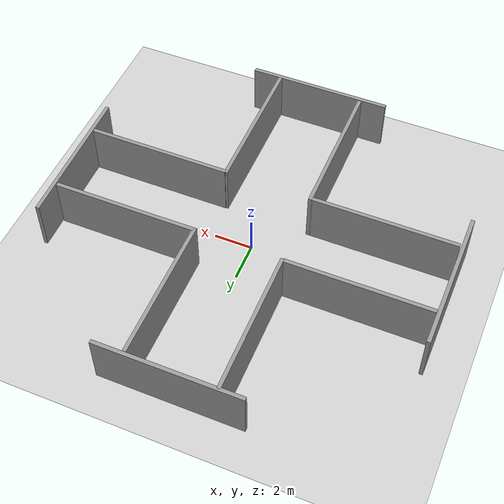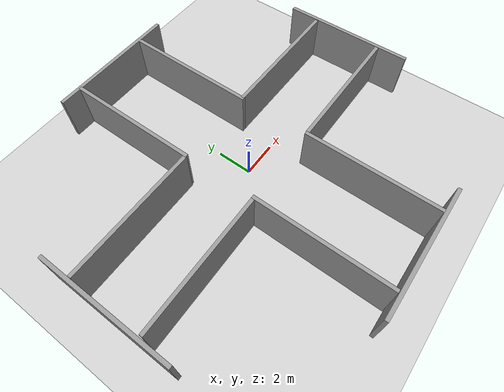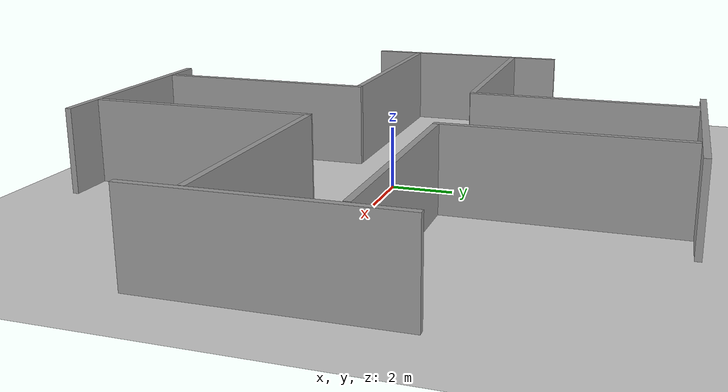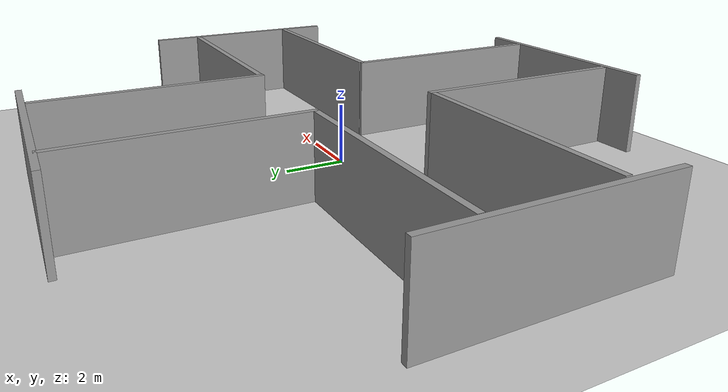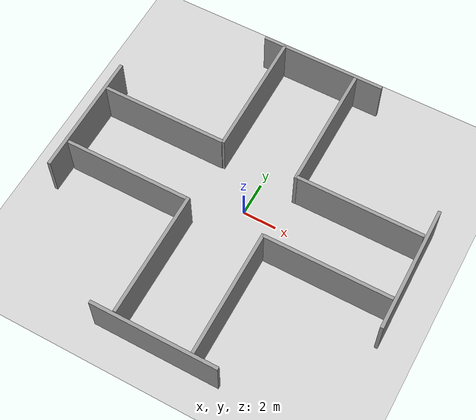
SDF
<sdf version="1.4">
 <world name="default">
  <light name="sun" type="directional">
   <pose>0 0 10 0 -0 0</pose>
   <diffuse>0.8 0.8 0.8 1</diffuse>
   <specular>0.2 0.2 0.2 1</specular>
   <attenuation>
    <range>1000</range>
    <constant>0.9</constant>
    <linear>0.01</linear>
    <quadratic>0.001</quadratic>
   </attenuation>
   <direction>-0.5 0.1 -0.9</direction>
  </light>
  <model name="ground_plane">
   <static>1</static>
   <link name="link">
    <collision name="collision">
     <geometry><plane><normal>0 0 1</normal><size>100 100</size></plane></geometry>
     <surface><friction><ode><mu>100</mu><mu2>50</mu2></ode></friction></surface>
    </collision>
    <visual name="visual">
     <cast_shadows>0</cast_shadows>
     <geometry><plane><normal>0 0 1</normal><size>100 100</size></plane></geometry>
     <material>
      <script><uri>file://media/materials/scripts/gazebo.material</uri><name>Gazebo/Grey</name></script>
     </material>
    </visual>
    <velocity_decay><linear>0</linear><angular>0</angular></velocity_decay>
   </link>
  </model>
  <physics type="ode">
   <max_step_size>0.001</max_step_size>
   <real_time_factor>1</real_time_factor>
   <real_time_update_rate>0.0</real_time_update_rate>
   <gravity>0 0 -9.8</gravity>
  </physics>
  <scene><ambient>0.4 0.4 0.4 1</ambient><background>0.7 0.7 0.7 1</background><shadows>1</shadows></scene>
  <spherical_coordinates>
   <surface_model>EARTH_WGS84</surface_model>
   <latitude_deg>0</latitude_deg>
   <longitude_deg>0</longitude_deg>
   <elevation>0</elevation>
   <heading_deg>0</heading_deg>
  </spherical_coordinates>
  <model name="grey_wall">
   <static>1</static>
   <link name="link">
    <pose>0 0 1.4 0 -0 0</pose>
    <collision name="collision"><geometry><box><size>7.5 0.2 2.8</size></box></geometry></collision>
    <visual name="visual">
     <cast_shadows>0</cast_shadows>
     <geometry><box><size>7.5 0.2 2.8</size></box></geometry>
     <material>
      <script>
       <uri>model://grey_wall/materials/scripts</uri>
       <uri>model://grey_wall/materials/textures</uri>
       <name>vrc/grey_wall</name>
      </script>
     </material>
    </visual>
    <velocity_decay><linear>0</linear><angular>0</angular></velocity_decay>
   </link>
   <pose>-6.22686 2.05821 0 0 -0 0</pose>
  </model>
  <model name="grey_wall_0">
   <static>1</static>
   <link name="link">
    <pose>0 0 1.4 0 -0 0</pose>
    <collision name="collision"><geometry><box><size>7.5 0.2 2.8</size></box></geometry></collision>
    <visual name="visual">
     <cast_shadows>0</cast_shadows>
     <geometry><box><size>7.5 0.2 2.8</size></box></geometry>
     <material>
      <script>
       <uri>model://grey_wall/materials/scripts</uri>
       <uri>model://grey_wall/materials/textures</uri>
       <name>vrc/grey_wall</name>
      </script>
     </material>
    </visual>
    <velocity_decay><linear>0</linear><angular>0</angular></velocity_decay>
   </link>
   <pose>-6.17814 -1.99553 0 0 -0 0</pose>
  </model>
  <model name="grey_wall_1">
   <static>1</static>
   <link name="link">
    <pose>0 0 1.4 0 -0 0</pose>
    <collision name="collision"><geometry><box><size>7.5 0.2 2.8</size></box></geometry></collision>
    <visual name="visual">
     <cast_shadows>0</cast_shadows>
     <geometry><box><size>7.5 0.2 2.8</size></box></geometry>
     <material>
      <script>
       <uri>model://grey_wall/materials/scripts</uri>
       <uri>model://grey_wall/materials/textures</uri>
       <name>vrc/grey_wall</name>
      </script>
     </material>
    </visual>
    <velocity_decay><linear>0</linear><angular>0</angular></velocity_decay>
   </link>
   <pose>5.91948 2.01473 0 0 -0 0</pose>
  </model>
  <model name="grey_wall_2">
   <static>1</static>
   <link name="link">
    <pose>0 0 1.4 0 -0 0</pose>
    <collision name="collision"><geometry><box><size>7.5 0.2 2.8</size></box></geometry></collision>
    <visual name="visual">
     <cast_shadows>0</cast_shadows>
     <geometry><box><size>7.5 0.2 2.8</size></box></geometry>
     <material>
      <script>
       <uri>model://grey_wall/materials/scripts</uri>
       <uri>model://grey_wall/materials/textures</uri>
       <name>vrc/grey_wall</name>
      </script>
     </material>
    </visual>
    <velocity_decay><linear>0</linear><angular>0</angular></velocity_decay>
   </link>
   <pose>6 -2 0 0 -0 0</pose>
  </model>
  <model name="grey_wall_3">
   <static>1</static>
   <link name="link">
    <pose>0 0 1.4 0 -0 0</pose>
    <collision name="collision"><geometry><box><size>7.5 0.2 2.8</size></box></geometry></collision>
    <visual name="visual">
     <cast_shadows>0</cast_shadows>
     <geometry><box><size>7.5 0.2 2.8</size></box></geometry>
     <material>
      <script>
       <uri>model://grey_wall/materials/scripts</uri>
       <uri>model://grey_wall/materials/textures</uri>
       <name>vrc/grey_wall</name>
      </script>
     </material>
    </visual>
    <velocity_decay><linear>0</linear><angular>0</angular></velocity_decay>
   </link>
   <pose>-2.33854 -5.64424 0 0 -0 1.5694</pose>
  </model>
  <model name="grey_wall_4">
   <static>1</static>
   <link name="link">
    <pose>0 0 1.4 0 -0 0</pose>
    <collision name="collision"><geometry><box><size>7.5 0.2 2.8</size></box></geometry></collision>
    <visual name="visual">
     <cast_shadows>0</cast_shadows>
     <geometry><box><size>7.5 0.2 2.8</size></box></geometry>
     <material>
      <script>
       <uri>model://grey_wall/materials/scripts</uri>
       <uri>model://grey_wall/materials/textures</uri>
       <name>vrc/grey_wall</name>
      </script>
     </material>
    </visual>
    <velocity_decay><linear>0</linear><angular>0</angular></velocity_decay>
   </link>
   <pose>-2.44146 5.75294 0 0 0 -1.56607</pose>
  </model>
  <model name="grey_wall_5">
   <static>1</static>
   <link name="link">
    <pose>0 0 1.4 0 -0 0</pose>
    <collision name="collision"><geometry><box><size>7.5 0.2 2.8</size></box></geometry></collision>
    <visual name="visual">
     <cast_shadows>0</cast_shadows>
     <geometry><box><size>7.5 0.2 2.8</size></box></geometry>
     <material>
      <script>
       <uri>model://grey_wall/materials/scripts</uri>
       <uri>model://grey_wall/materials/textures</uri>
       <name>vrc/grey_wall</name>
      </script>
     </material>
    </visual>
    <velocity_decay><linear>0</linear><angular>0</angular></velocity_decay>
   </link>
   <pose>2.22344 -5.67492 0 0 0 -1.56988</pose>
  </model>
  <model name="grey_wall_6">
   <static>1</static>
   <link name="link">
    <pose>0 0 1.4 0 -0 0</pose>
    <collision name="collision"><geometry><box><size>7.5 0.2 2.8</size></box></geometry></collision>
    <visual name="visual">
     <cast_shadows>0</cast_shadows>
     <geometry><box><size>7.5 0.2 2.8</size></box></geometry>
     <material>
      <script>
       <uri>model://grey_wall/materials/scripts</uri>
       <uri>model://grey_wall/materials/textures</uri>
       <name>vrc/grey_wall</name>
      </script>
     </material>
    </visual>
    <velocity_decay><linear>0</linear><angular>0</angular></velocity_decay>
   </link>
   <pose>2.13059 5.65683 0 0 0 -1.56846</pose>
  </model>
  <model name="grey_wall_7">
   <static>1</static>
   <link name="link">
    <pose>0 0 1.4 0 -0 0</pose>
    <collision name="collision"><geometry><box><size>7.5 0.2 2.8</size></box></geometry></collision>
    <visual name="visual">
     <cast_shadows>0</cast_shadows>
     <geometry><box><size>7.5 0.2 2.8</size></box></geometry>
     <material>
      <script>
       <uri>model://grey_wall/materials/scripts</uri>
       <uri>model://grey_wall/materials/textures</uri>
       <name>vrc/grey_wall</name>
      </script>
     </material>
    </visual>
    <velocity_decay><linear>0</linear><angular>0</angular></velocity_decay>
   </link>
   <pose>0 -9.52041 0 0 -0 0</pose>
  </model>
  <model name="grey_wall_8">
   <static>1</static>
   <link name="link">
    <pose>0 0 1.4 0 -0 0</pose>
    <collision name="collision"><geometry><box><size>7.5 0.2 2.8</size></box></geometry></collision>
    <visual name="visual">
     <cast_shadows>0</cast_shadows>
     <geometry><box><size>7.5 0.2 2.8</size></box></geometry>
     <material>
      <script>
       <uri>model://grey_wall/materials/scripts</uri>
       <uri>model://grey_wall/materials/textures</uri>
       <name>vrc/grey_wall</name>
      </script>
     </material>
    </visual>
    <velocity_decay><linear>0</linear><angular>0</angular></velocity_decay>
   </link>
   <pose>0 9.51502 0 0 -0 0</pose>
  </model>
  <model name="grey_wall_9">
   <static>1</static>
   <link name="link">
    <pose>0 0 1.4 0 -0 0</pose>
    <collision name="collision"><geometry><box><size>7.5 0.2 2.8</size></box></geometry></collision>
    <visual name="visual">
     <cast_shadows>0</cast_shadows>
     <geometry><box><size>7.5 0.2 2.8</size></box></geometry>
     <material>
      <script>
       <uri>model://grey_wall/materials/scripts</uri>
       <uri>model://grey_wall/materials/textures</uri>
       <name>vrc/grey_wall</name>
      </script>
     </material>
    </visual>
    <velocity_decay><linear>0</linear><angular>0</angular></velocity_decay>
   </link>
   <pose>-10.0897 0.037349 0 0 0 -1.5714</pose>
  </model>
  <model name="grey_wall_10">
   <static>1</static>
   <link name="link">
    <pose>0 0 1.4 0 -0 0</pose>
    <collision name="collision"><geometry><box><size>7.5 0.2 2.8</size></box></geometry></collision>
    <visual name="visual">
     <cast_shadows>0</cast_shadows>
     <geometry><box><size>7.5 0.2 2.8</size></box></geometry>
     <material>
      <script>
       <uri>model://grey_wall/materials/scripts</uri>
       <uri>model://grey_wall/materials/textures</uri>
       <name>vrc/grey_wall</name>
      </script>
     </material>
    </visual>
    <velocity_decay><linear>0</linear><angular>0</angular></velocity_decay>
   </link>
   <pose>9.84156 0.001758 0 0 0 -1.55861</pose>
  </model>
 </world>
</sdf>
